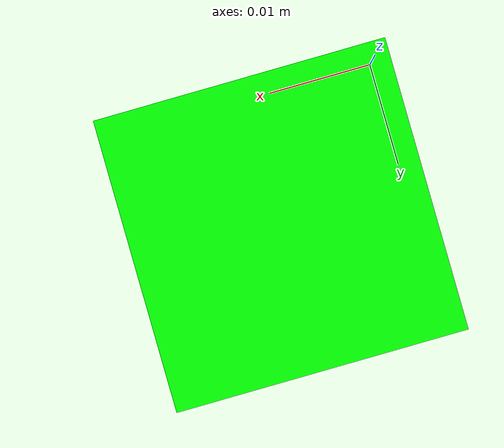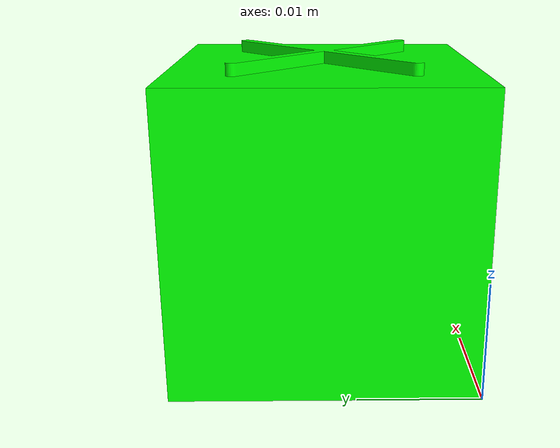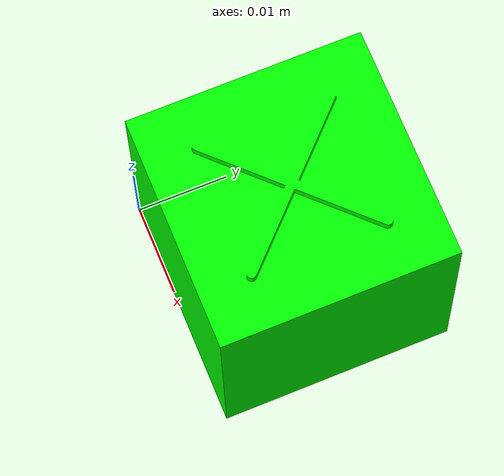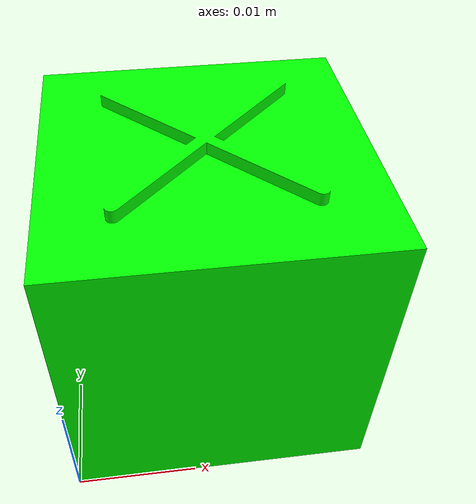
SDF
<sdf version="1.5">
  <model name="X Cube">
    <static>true</static>
    <link name="x_cube">
      <pose>0 0 0 0 0 0</pose>
      <collision name="collision">
        <geometry>
          <mesh>
            <uri>file://x_cube/materials/meshes/X-Cube.stl</uri>
            <scale>0.001 0.001 0.001</scale>
          </mesh>
        </geometry>
      </collision>
      <visual name="visual">
        <geometry>
          <mesh>
            <uri>file://x_cube/materials/meshes/X-Cube.stl</uri>
            <scale>0.001 0.001 0.001</scale>
          </mesh>
        </geometry>
        <material>
          <ambient>0 1 0 1</ambient>
          <diffuse>0 1 0 1</diffuse>
          <specular>0 0 0 0</specular>
          <emissive>0 0 0 1</emissive>
        </material>
      </visual>
    </link>
  </model>
</sdf>
